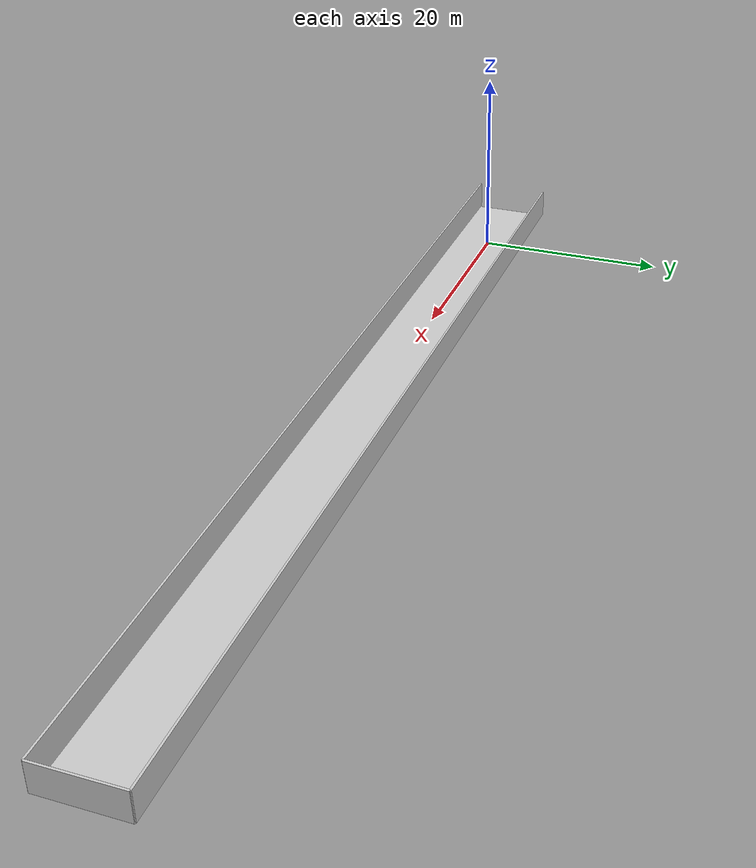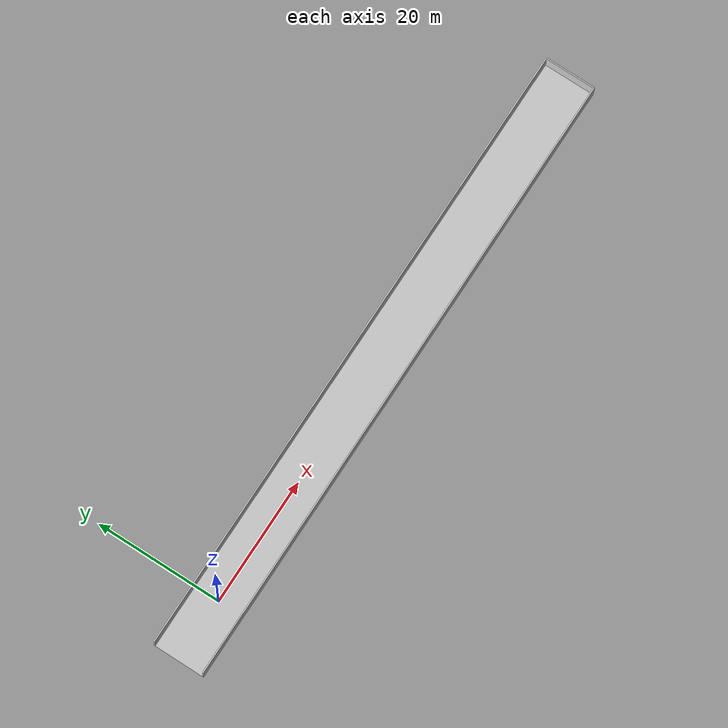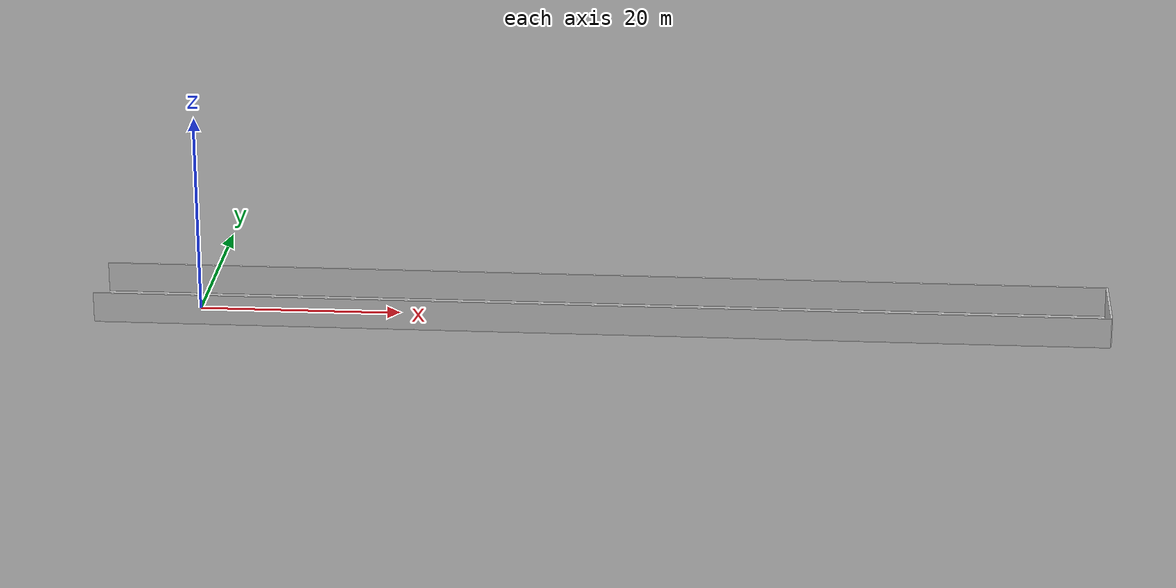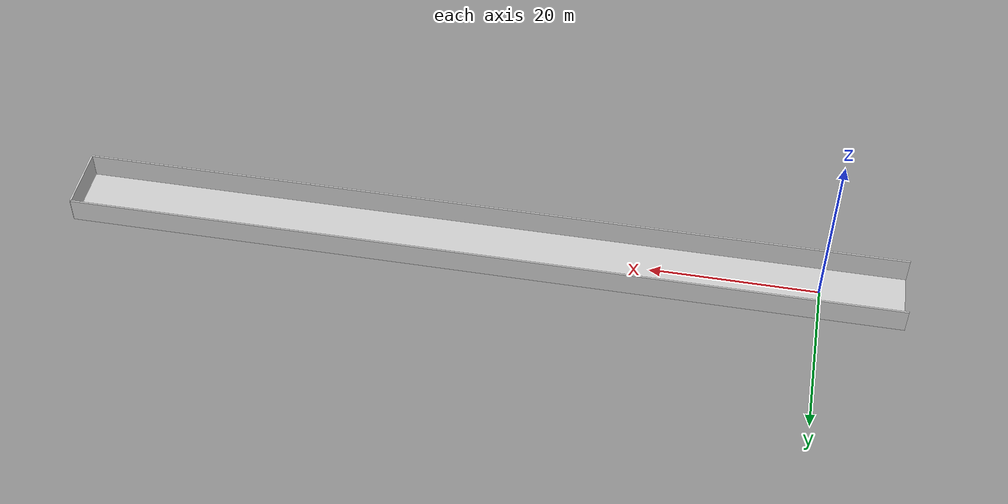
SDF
<?xml version="1.0" ?>
<sdf version="1.9">
  <world name="default">

    <physics name="1ms" type="ignore">
      <max_step_size>0.001</max_step_size>
      <real_time_factor>1.0</real_time_factor>
    </physics>

    <plugin filename="gz-sim-physics-system"
      name="gz::sim::systems::Physics">
    </plugin>

    <plugin
      filename="gz-sim-sensors-system"
      name="gz::sim::systems::Sensors">
      <render_engine>ogre2</render_engine>
    </plugin>

    <plugin filename="gz-sim-user-commands-system"
      name="gz::sim::systems::UserCommands">
    </plugin>
    <plugin filename="gz-sim-scene-broadcaster-system"
      name="gz::sim::systems::SceneBroadcaster">
    </plugin>

    <scene>
      <ambient>0.8 0.8 0.8 1</ambient>
      <background>0.4 0.4 0.4 1</background>
      <shadows>false</shadows>
    </scene>

    <light type="directional" name="sun">
      <cast_shadows>false</cast_shadows>
      <pose>0 0 20 0 0 0</pose>
      <diffuse>1 1 1 1</diffuse>
      <specular>0.0 0.0 0.0 1</specular>
      <direction>-0.5 0.1 -0.9</direction>
    </light>

    <!-- AXES -->
    <model name="axes">
      <static>1</static>
      <link name="link">
        <visual name="r">
          <cast_shadows>0</cast_shadows>
          <pose>5 0 0.1 0 0 0</pose>
          <geometry>
            <box>
              <size>10 0.01 0.01</size>
            </box>
          </geometry>
          <material>
            <ambient>1 0 0 0.8</ambient>
            <diffuse>1 0 0 0.8</diffuse>
            <emissive>1 0 0 0.8</emissive>
            <specular>0.5 0.5 0.5 0.8</specular>
          </material>
        </visual>
        <visual name="g">
          <cast_shadows>0</cast_shadows>
          <pose>0 5 0.1 0 0 0</pose>
          <geometry>
            <box>
              <size>0.01 10 0.01</size>
            </box>
          </geometry>
          <material>
            <ambient>0 1 0 0.8</ambient>
            <diffuse>0 1 0 0.8</diffuse>
            <emissive>0 1 0 0.8</emissive>
            <specular>0.5 0.5 0.5 0.8</specular>
          </material>
        </visual>
        <visual name="b">
          <cast_shadows>0</cast_shadows>
          <pose>0 0 5.1 0 0 0</pose>
          <geometry>
            <box>
              <size>0.01 0.01 10</size>
            </box>
          </geometry>
          <material>
            <ambient>0 0 1 0.8</ambient>
            <diffuse>0 0 1 0.8</diffuse>
            <emissive>0 0 1 0.8</emissive>
            <specular>0.5 0.5 0.5 0.8</specular>
          </material>
        </visual>
      </link>
    </model>

    <!-- ================= RUNWAY GROUND ================= -->
    <model name="runway_ground">
      <static>true</static>
      <pose>40 0 0 0 0 3.14159</pose>
      <link name="link">
        <collision name="collision">
          <geometry>
            <plane>
              <normal>0 0 1</normal>
              <size>100 8</size>
            </plane>
          </geometry>
        </collision>
        <visual name="visual">
          <cast_shadows>false</cast_shadows>
          <geometry>
            <plane>
              <normal>0 0 1</normal>
              <size>100 8</size>
            </plane>
          </geometry>
          <material>
            <ambient>0.8 0.8 0.8 1</ambient>
            <diffuse>0.8 0.8 0.8 1</diffuse>
            <specular>0.0 0.0 0.0 1</specular>
            <pbr>
              <metal>
                <albedo_map>file://materials/textures/runway.png</albedo_map>
                <roughness>1.0</roughness>
                <metalness>0</metalness>
              </metal>
            </pbr>
          </material>
        </visual>
      </link>
    </model>

    <!-- ================= WALLS ================= -->

    <!-- LEFT WALL — single box, texture stretched across full length -->
    <model name="wall_left">
      <static>true</static>
      <pose>40 4 1.5 0 0 0</pose>
      <link name="link">
        <collision name="collision">
          <geometry>
            <box><size>100 0.2 3</size></box>
          </geometry>
        </collision>
        <visual name="visual">
          <cast_shadows>false</cast_shadows>
          <geometry>
            <box><size>100 0.2 3</size></box>
          </geometry>
          <material>
            <ambient>0.8 0.8 0.8 1</ambient>
            <diffuse>0.8 0.8 0.8 1</diffuse>
            <specular>0.0 0.0 0.0 1</specular>
            <pbr>
              <metal>
                <albedo_map>file://materials/textures/plaster_bricks.jpg</albedo_map>
                <roughness>1.0</roughness>
                <metalness>0</metalness>
              </metal>
            </pbr>
          </material>
        </visual>
      </link>
    </model>

    <!-- RIGHT WALL -->
    <model name="wall_right">
      <static>true</static>
      <pose>40 -4 1.5 0 0 0</pose>
      <link name="link">
        <collision name="collision">
          <geometry>
            <box><size>100 0.2 3</size></box>
          </geometry>
        </collision>
        <visual name="visual">
          <cast_shadows>false</cast_shadows>
          <geometry>
            <box><size>100 0.2 3</size></box>
          </geometry>
          <material>
            <ambient>0.8 0.8 0.8 1</ambient>
            <diffuse>0.8 0.8 0.8 1</diffuse>
            <specular>0.0 0.0 0.0 1</specular>
            <pbr>
              <metal>
                <albedo_map>file://materials/textures/plaster_bricks.jpg</albedo_map>
                <roughness>1.0</roughness>
                <metalness>0</metalness>
              </metal>
            </pbr>
          </material>
        </visual>
      </link>
    </model>

    <!-- BACK WALL -->
    <model name="wall_back">
      <static>true</static>
      <pose>90 0 1.5 0 0 0</pose>
      <link name="link">
        <collision name="collision">
          <geometry>
            <box><size>0.2 8 3</size></box>
          </geometry>
        </collision>
        <visual name="visual">
          <cast_shadows>false</cast_shadows>
          <geometry>
            <box><size>0.2 8 3</size></box>
          </geometry>
          <material>
            <ambient>0.8 0.8 0.8 1</ambient>
            <diffuse>0.8 0.8 0.8 1</diffuse>
            <specular>0.0 0.0 0.0 1</specular>
            <pbr>
              <metal>
                <albedo_map>file://materials/textures/plaster_bricks.jpg</albedo_map>
                <roughness>1.0</roughness>
                <metalness>0</metalness>
              </metal>
            </pbr>
          </material>
        </visual>
      </link>
    </model>

  </world>
</sdf>
